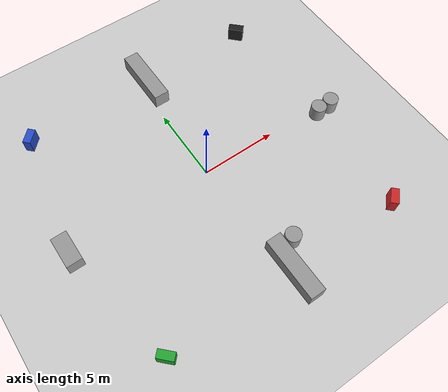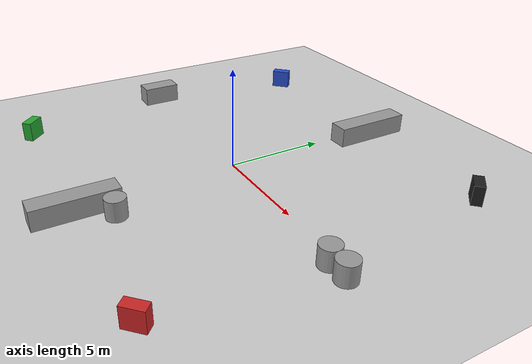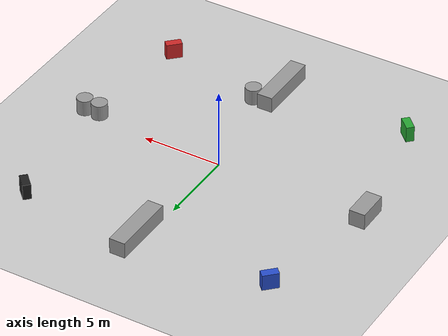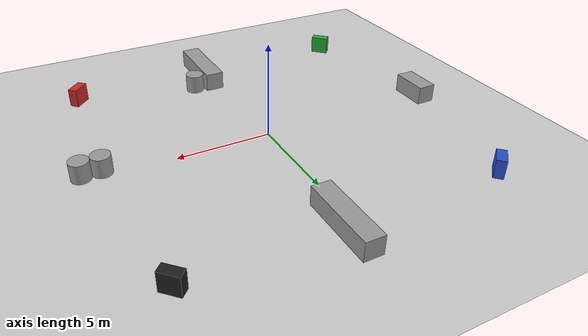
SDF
<sdf version="1.4">
 <world name="default">
  <light name="sun" type="directional">
   <pose>0 0 10 0 -0 0</pose>
   <diffuse>0.8 0.8 0.8 1</diffuse>
   <specular>0.2 0.2 0.2 1</specular>
   <attenuation>
    <range>1000</range>
    <constant>0.9</constant>
    <linear>0.01</linear>
    <quadratic>0.001</quadratic>
   </attenuation>
   <direction>-0.5 0.1 -0.9</direction>
  </light>
  <model name="ground_plane">
   <static>1</static>
   <link name="link">
    <collision name="collision">
     <geometry><plane><normal>0 0 1</normal><size>20 20</size></plane></geometry>
     <surface><friction><ode><mu>100</mu><mu2>50</mu2></ode></friction></surface>
    </collision>
    <visual name="visual">
     <cast_shadows>0</cast_shadows>
     <geometry><plane><normal>0 0 1</normal><size>20 20</size></plane></geometry>
     <material>
      <script><uri>file://media/materials/scripts/gazebo.material</uri><name>Gazebo/Grey</name></script>
     </material>
    </visual>
    <velocity_decay><linear>0</linear><angular>0</angular></velocity_decay>
   </link>
  </model>
  <physics type="ode">
   <max_step_size>0.01</max_step_size>
   <real_time_factor>1</real_time_factor>
   <real_time_update_rate>100</real_time_update_rate>
   <gravity>0 0 -9.8</gravity>
  </physics>
  <scene><ambient>0.4 0.4 0.4 1</ambient><background>0.7 0.7 0.7 1</background><shadows>1</shadows></scene>
  <model name="panel_1">
   <pose>8 -8 0.5 0 -0 0.785</pose>
   <link name="link">
    <inertial>
     <mass>1</mass>
     <inertia><ixx>1</ixx><ixy>0</ixy><ixz>0</ixz><iyy>1</iyy><iyz>0</iyz><izz>1</izz></inertia>
    </inertial>
    <collision name="collision"><geometry><box><size>1 0.5 1</size></box></geometry></collision>
    <visual name="visual">
     <geometry><box><size>1 0.5 1</size></box></geometry>
     <material>
      <script><uri>file://media/materials/scripts/gazebo.material</uri><name>Gazebo/Red</name></script>
     </material>
    </visual>
    <velocity_decay><linear>0</linear><angular>0</angular></velocity_decay>
   </link>
   <static>0</static>
  </model>
  <model name="panel_2">
   <pose>-8 -8 0.5 0 0 -0.784992</pose>
   <link name="link">
    <inertial>
     <mass>1</mass>
     <inertia><ixx>1</ixx><ixy>0</ixy><ixz>0</ixz><iyy>1</iyy><iyz>0</iyz><izz>1</izz></inertia>
    </inertial>
    <collision name="collision"><geometry><box><size>1 0.5 1</size></box></geometry></collision>
    <visual name="visual">
     <geometry><box><size>1 0.5 1</size></box></geometry>
     <material>
      <script><uri>file://media/materials/scripts/gazebo.material</uri><name>Gazebo/Green</name></script>
     </material>
    </visual>
    <velocity_decay><linear>0</linear><angular>0</angular></velocity_decay>
   </link>
   <static>0</static>
  </model>
  <model name="panel_3">
   <pose>-8 8 0.5 0 -0 0.785008</pose>
   <link name="link">
    <inertial>
     <mass>1</mass>
     <inertia><ixx>1</ixx><ixy>0</ixy><ixz>0</ixz><iyy>1</iyy><iyz>0</iyz><izz>1</izz></inertia>
    </inertial>
    <collision name="collision"><geometry><box><size>1 0.5 1</size></box></geometry></collision>
    <visual name="visual">
     <geometry><box><size>1 0.5 1</size></box></geometry>
     <material>
      <script><uri>file://media/materials/scripts/gazebo.material</uri><name>Gazebo/Blue</name></script>
     </material>
    </visual>
    <velocity_decay><linear>0</linear><angular>0</angular></velocity_decay>
   </link>
   <static>0</static>
  </model>
  <model name="panel_4">
   <pose>8 8 0.5 0 0 -0.784992</pose>
   <link name="link">
    <inertial>
     <mass>1</mass>
     <inertia><ixx>1</ixx><ixy>0</ixy><ixz>0</ixz><iyy>1</iyy><iyz>0</iyz><izz>1</izz></inertia>
    </inertial>
    <collision name="collision"><geometry><box><size>1 0.5 1</size></box></geometry></collision>
    <visual name="visual">
     <geometry><box><size>1 0.5 1</size></box></geometry>
     <material>
      <script><uri>file://media/materials/scripts/gazebo.material</uri><name>Gazebo/Black</name></script>
     </material>
    </visual>
    <velocity_decay><linear>0</linear><angular>0</angular></velocity_decay>
   </link>
   <static>0</static>
  </model>
  <model name="wall_1">
   <pose>0.477061 -7.99988 0.499315 -0.000322 8.2e-05 1.1e-05</pose>
   <link name="link">
    <inertial>
     <mass>1</mass>
     <inertia><ixx>1</ixx><ixy>0</ixy><ixz>0</ixz><iyy>1</iyy><iyz>0</iyz><izz>1</izz></inertia>
    </inertial>
    <collision name="collision"><geometry><box><size>1 4 1</size></box></geometry></collision>
    <visual name="visual">
     <geometry><box><size>1 4 1</size></box></geometry>
     <material>
      <script><uri>file://media/materials/scripts/gazebo.material</uri><name>Gazebo/Grey</name></script>
     </material>
    </visual>
    <velocity_decay><linear>0</linear><angular>0</angular></velocity_decay>
   </link>
   <static>0</static>
  </model>
  <model name="wall_2">
   <pose>0.556627 8.00013 0.499315 -0.000322 8.2e-05 1.1e-05</pose>
   <link name="link">
    <inertial>
     <mass>1</mass>
     <inertia><ixx>1</ixx><ixy>0</ixy><ixz>0</ixz><iyy>1</iyy><iyz>0</iyz><izz>1</izz></inertia>
    </inertial>
    <collision name="collision"><geometry><box><size>1 4 1</size></box></geometry></collision>
    <visual name="visual">
     <geometry><box><size>1 4 1</size></box></geometry>
     <material>
      <script><uri>file://media/materials/scripts/gazebo.material</uri><name>Gazebo/Grey</name></script>
     </material>
    </visual>
    <velocity_decay><linear>0</linear><angular>0</angular></velocity_decay>
   </link>
   <static>0</static>
  </model>
  <model name="unit_cylinder_1">
   <pose>9.48753 -0.474538 0.49912 -0 -0 -0</pose>
   <link name="link">
    <inertial>
     <mass>1</mass>
     <inertia><ixx>1</ixx><ixy>0</ixy><ixz>0</ixz><iyy>1</iyy><iyz>0</iyz><izz>1</izz></inertia>
    </inertial>
    <collision name="collision">
     <geometry><cylinder><radius>0.5</radius><length>1</length></cylinder></geometry>
    </collision>
    <visual name="visual">
     <geometry><cylinder><radius>0.5</radius><length>1</length></cylinder></geometry>
     <material>
      <script><uri>file://media/materials/scripts/gazebo.material</uri><name>Gazebo/Grey</name></script>
     </material>
    </visual>
    <velocity_decay><linear>0</linear><angular>0</angular></velocity_decay>
   </link>
   <static>0</static>
  </model>
  <model name="unit_cylinder_2">
   <pose>8.48775 -0.495652 0.49912 -0 -0 -6e-06</pose>
   <link name="link">
    <inertial>
     <mass>1</mass>
     <inertia><ixx>1</ixx><ixy>0</ixy><ixz>0</ixz><iyy>1</iyy><iyz>0</iyz><izz>1</izz></inertia>
    </inertial>
    <collision name="collision">
     <geometry><cylinder><radius>0.5</radius><length>1</length></cylinder></geometry>
    </collision>
    <visual name="visual">
     <geometry><cylinder><radius>0.5</radius><length>1</length></cylinder></geometry>
     <material>
      <script><uri>file://media/materials/scripts/gazebo.material</uri><name>Gazebo/Grey</name></script>
     </material>
    </visual>
    <velocity_decay><linear>0</linear><angular>0</angular></velocity_decay>
   </link>
   <static>0</static>
  </model>
  <model name="unit_box_3">
   <pose>-9.53877 -0.014414 0.5 0 -0 0</pose>
   <link name="link">
    <inertial>
     <mass>1</mass>
     <inertia><ixx>1</ixx><ixy>0</ixy><ixz>0</ixz><iyy>1</iyy><iyz>0</iyz><izz>1</izz></inertia>
    </inertial>
    <collision name="collision"><geometry><box><size>1 2 1</size></box></geometry></collision>
    <visual name="visual">
     <geometry><box><size>1 2 1</size></box></geometry>
     <material>
      <script><uri>file://media/materials/scripts/gazebo.material</uri><name>Gazebo/Grey</name></script>
     </material>
    </visual>
    <velocity_decay><linear>0</linear><angular>0</angular></velocity_decay>
   </link>
   <static>0</static>
  </model>
  <model name="unit_cylinder_1_0">
   <pose>1.53675 -6.51255 0.49912 -0 -0 -0</pose>
   <link name="link">
    <inertial>
     <mass>1</mass>
     <inertia><ixx>1</ixx><ixy>0</ixy><ixz>0</ixz><iyy>1</iyy><iyz>0</iyz><izz>1</izz></inertia>
    </inertial>
    <collision name="collision">
     <geometry><cylinder><radius>0.5</radius><length>1</length></cylinder></geometry>
    </collision>
    <visual name="visual">
     <geometry><cylinder><radius>0.5</radius><length>1</length></cylinder></geometry>
     <material>
      <script><uri>file://media/materials/scripts/gazebo.material</uri><name>Gazebo/Grey</name></script>
     </material>
    </visual>
    <velocity_decay><linear>0</linear><angular>0</angular></velocity_decay>
   </link>
   <static>0</static>
  </model>
 </world>
</sdf>
